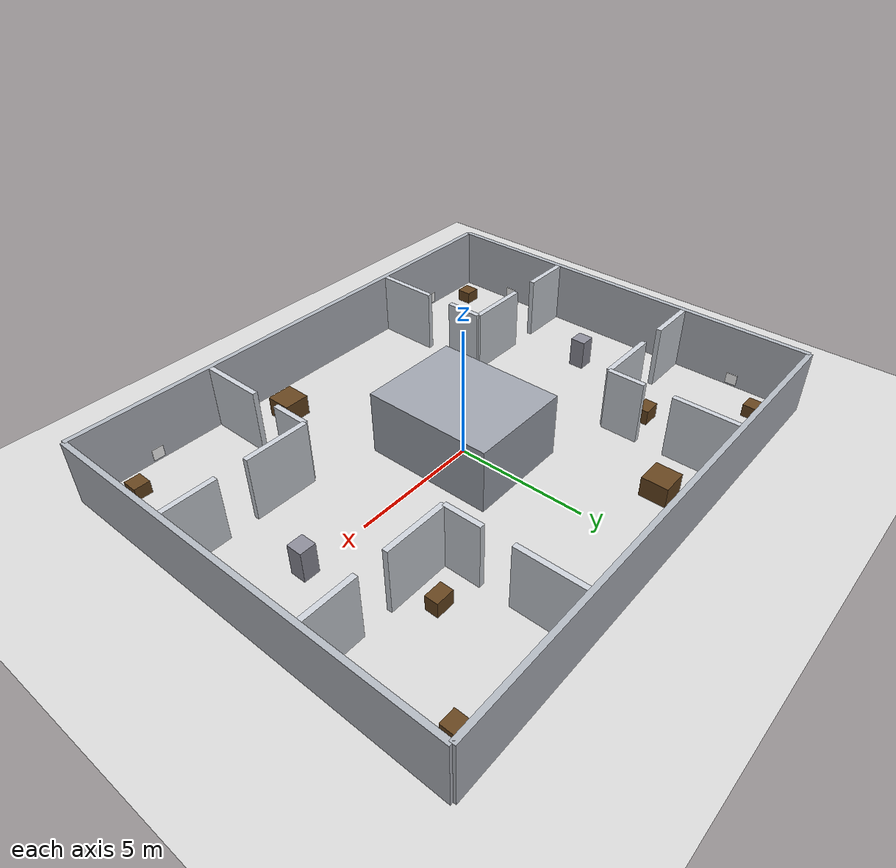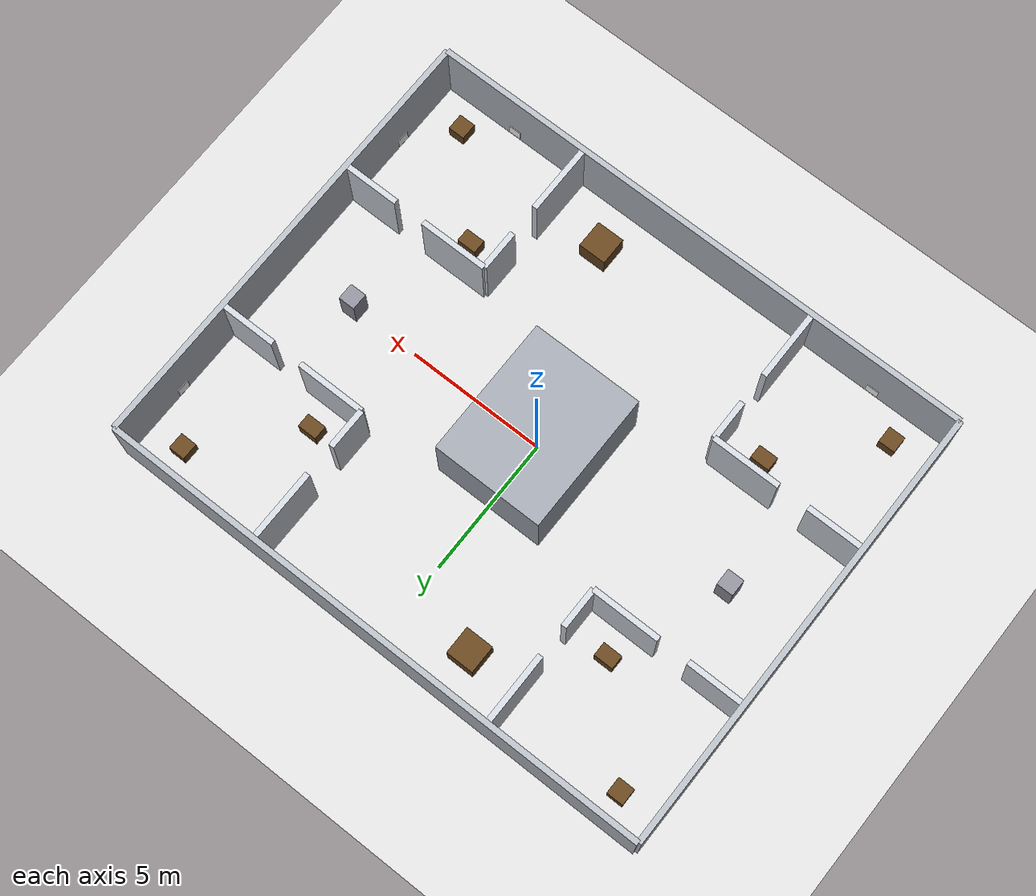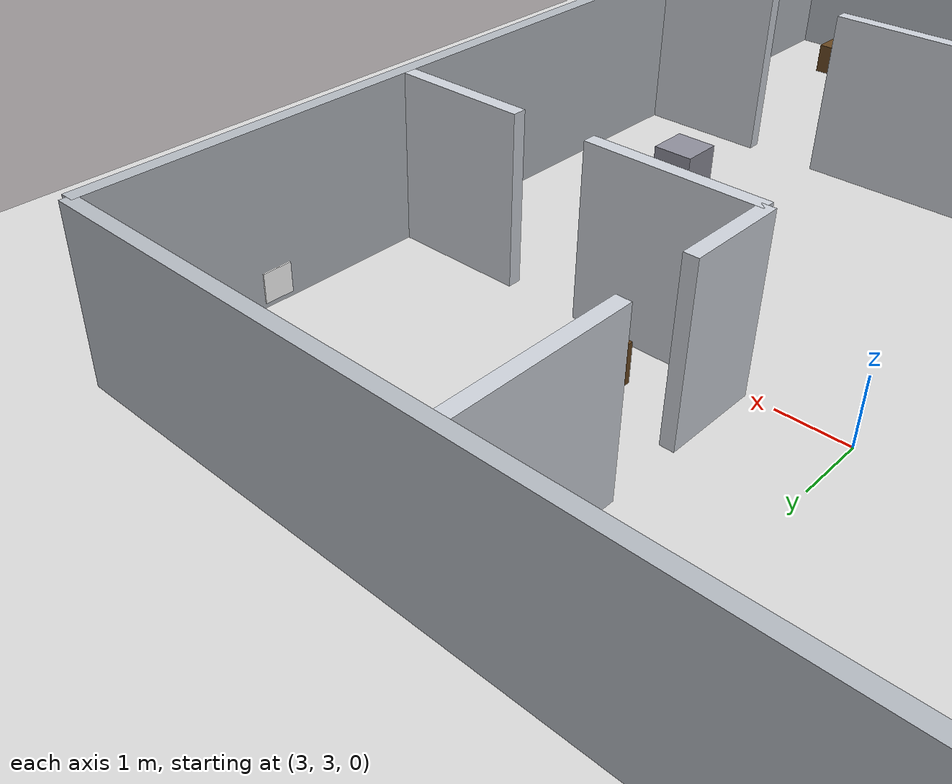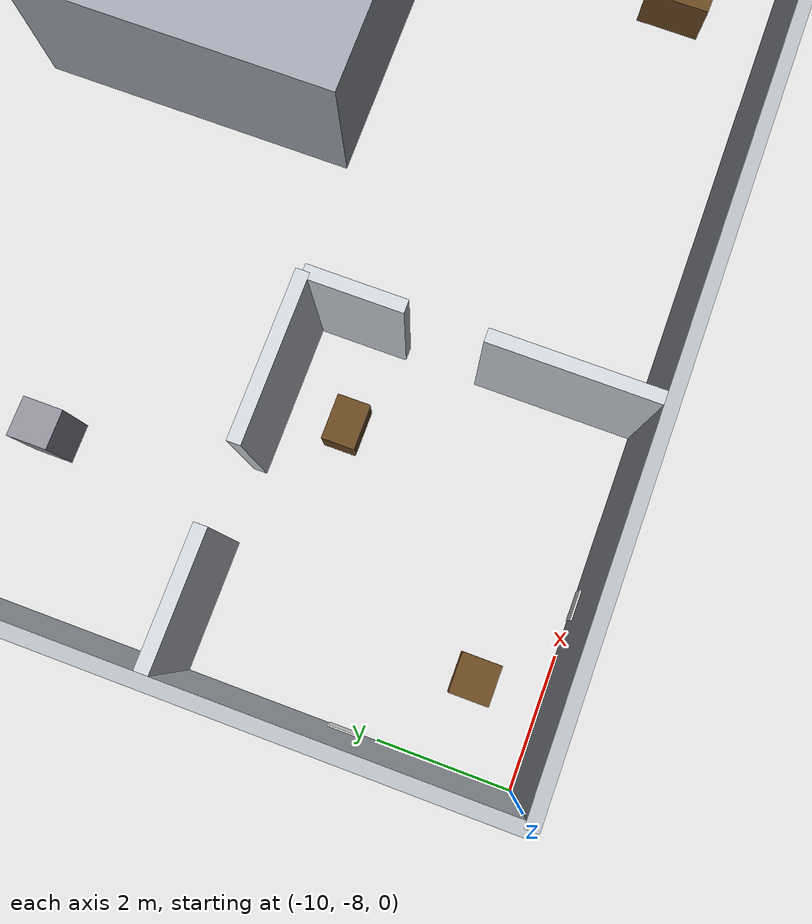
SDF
<?xml version="1.0"?>
<sdf version="1.8">
  <world name="multi_room">
    <physics type="ode">
      <real_time_update_rate>1000.0</real_time_update_rate>
      <max_step_size>0.001</max_step_size>
      <real_time_factor>1.0</real_time_factor>
      <ode>
        <solver>
          <type>quick</type>
          <iters>150</iters>
          <precon_iters>0</precon_iters>
          <sor>1.4</sor>
          <use_dynamic_moi_rescaling>1</use_dynamic_moi_rescaling>
        </solver>
        <constraints>
          <cfm>0.00001</cfm>
          <erp>0.2</erp>
          <contact_max_correcting_vel>2000.0</contact_max_correcting_vel>
          <contact_surface_layer>0.01</contact_surface_layer>
        </constraints>
      </ode>
    </physics>

    <!-- Essential Gazebo Plugins for Simulation -->
    <plugin filename="gz-sim-physics-system" name="gz::sim::systems::Physics"/>
    <plugin filename="gz-sim-user-commands-system" name="gz::sim::systems::UserCommands"/>
    <plugin filename="gz-sim-scene-broadcaster-system" name="gz::sim::systems::SceneBroadcaster"/>
    <plugin filename="gz-sim-sensors-system" name="gz::sim::systems::Sensors">
      <render_engine>ogre2</render_engine>
    </plugin>
    <plugin filename="gz-sim-imu-system" name="gz::sim::systems::Imu"/>

    <!-- Ambient Lighting & Sun -->
    <light type="directional" name="sun">
      <cast_shadows>true</cast_shadows>
      <pose>0 0 10 0 0 0</pose>
      <diffuse>0.8 0.8 0.8 1</diffuse>
      <specular>0.2 0.2 0.2 1</specular>
      <direction>-0.5 0.1 -0.9</direction>
    </light>

    <!-- Ground Plane -->
    <model name="ground_plane">
      <static>true</static>
      <link name="link">
        <collision name="collision">
          <geometry>
            <plane>
              <normal>0 0 1</normal>
              <size>50 50</size>
            </plane>
          </geometry>
          <surface>
            <friction>
              <ode>
                <mu>100</mu>
                <mu2>50</mu2>
              </ode>
            </friction>
          </surface>
        </collision>
        <visual name="visual">
          <geometry>
            <plane>
              <normal>0 0 1</normal>
              <size>50 50</size>
            </plane>
          </geometry>
          <material>
            <ambient>0.85 0.85 0.85 1</ambient>
            <diffuse>0.85 0.85 0.85 1</diffuse>
            <specular>0.1 0.1 0.1 1</specular>
          </material>
        </visual>
      </link>
    </model>

    <!-- Multi-room structure: perimeter, core, room partitions, obstacles -->
    <model name="multi_room_structure">
      <static>true</static>
      <link name="structure_link">

        <!-- Perimeter walls (20.2 x 16.2 outer, 2.5 m high, 0.2 m thick) -->
        <collision name="north_wall_col">
          <pose>0 8.1 1.25 0 0 0</pose>
          <geometry><box><size>20.2 0.2 2.5</size></box></geometry>
        </collision>
        <visual name="north_wall_vis">
          <pose>0 8.1 1.25 0 0 0</pose>
          <geometry><box><size>20.2 0.2 2.5</size></box></geometry>
          <material><ambient>0.7 0.72 0.75 1</ambient><diffuse>0.7 0.72 0.75 1</diffuse></material>
        </visual>

        <collision name="south_wall_col">
          <pose>0 -8.1 1.25 0 0 0</pose>
          <geometry><box><size>20.2 0.2 2.5</size></box></geometry>
        </collision>
        <visual name="south_wall_vis">
          <pose>0 -8.1 1.25 0 0 0</pose>
          <geometry><box><size>20.2 0.2 2.5</size></box></geometry>
          <material><ambient>0.7 0.72 0.75 1</ambient><diffuse>0.7 0.72 0.75 1</diffuse></material>
        </visual>

        <collision name="west_wall_col">
          <pose>-10.1 0 1.25 0 0 0</pose>
          <geometry><box><size>0.2 16.2 2.5</size></box></geometry>
        </collision>
        <visual name="west_wall_vis">
          <pose>-10.1 0 1.25 0 0 0</pose>
          <geometry><box><size>0.2 16.2 2.5</size></box></geometry>
          <material><ambient>0.7 0.72 0.75 1</ambient><diffuse>0.7 0.72 0.75 1</diffuse></material>
        </visual>

        <collision name="east_wall_col">
          <pose>10.1 0 1.25 0 0 0</pose>
          <geometry><box><size>0.2 16.2 2.5</size></box></geometry>
        </collision>
        <visual name="east_wall_vis">
          <pose>10.1 0 1.25 0 0 0</pose>
          <geometry><box><size>0.2 16.2 2.5</size></box></geometry>
          <material><ambient>0.7 0.72 0.75 1</ambient><diffuse>0.7 0.72 0.75 1</diffuse></material>
        </visual>

        <!-- Central core (solid block around which the corridor loops) -->
        <collision name="core_col">
          <pose>0 0 1.25 0 0 0</pose>
          <geometry><box><size>4.0 5.0 2.5</size></box></geometry>
        </collision>
        <visual name="core_vis">
          <pose>0 0 1.25 0 0 0</pose>
          <geometry><box><size>4.0 5.0 2.5</size></box></geometry>
          <material><ambient>0.62 0.64 0.68 1</ambient><diffuse>0.62 0.64 0.68 1</diffuse></material>
        </visual>

        <!-- Room 01 (NW): east partition y 3..8 with doorway y 4.45..5.55,
             south partition x -10..-4.5 with doorway x -8.05..-6.95 -->
        <collision name="r01_east_part_n_col">
          <pose>-4.5 3.725 1.25 0 0 0</pose>
          <geometry><box><size>0.2 1.45 2.5</size></box></geometry>
        </collision>
        <visual name="r01_east_part_n_vis">
          <pose>-4.5 3.725 1.25 0 0 0</pose>
          <geometry><box><size>0.2 1.45 2.5</size></box></geometry>
          <material><ambient>0.8 0.82 0.85 1</ambient><diffuse>0.8 0.82 0.85 1</diffuse></material>
        </visual>
        <collision name="r01_east_part_s_col">
          <pose>-4.5 6.775 1.25 0 0 0</pose>
          <geometry><box><size>0.2 2.45 2.5</size></box></geometry>
        </collision>
        <visual name="r01_east_part_s_vis">
          <pose>-4.5 6.775 1.25 0 0 0</pose>
          <geometry><box><size>0.2 2.45 2.5</size></box></geometry>
          <material><ambient>0.8 0.82 0.85 1</ambient><diffuse>0.8 0.82 0.85 1</diffuse></material>
        </visual>
        <collision name="r01_south_part_w_col">
          <pose>-9.025 3 1.25 0 0 0</pose>
          <geometry><box><size>1.95 0.2 2.5</size></box></geometry>
        </collision>
        <visual name="r01_south_part_w_vis">
          <pose>-9.025 3 1.25 0 0 0</pose>
          <geometry><box><size>1.95 0.2 2.5</size></box></geometry>
          <material><ambient>0.8 0.82 0.85 1</ambient><diffuse>0.8 0.82 0.85 1</diffuse></material>
        </visual>
        <collision name="r01_south_part_e_col">
          <pose>-5.725 3 1.25 0 0 0</pose>
          <geometry><box><size>2.45 0.2 2.5</size></box></geometry>
        </collision>
        <visual name="r01_south_part_e_vis">
          <pose>-5.725 3 1.25 0 0 0</pose>
          <geometry><box><size>2.45 0.2 2.5</size></box></geometry>
          <material><ambient>0.8 0.82 0.85 1</ambient><diffuse>0.8 0.82 0.85 1</diffuse></material>
        </visual>

        <!-- Room 02 (NE): west partition y 3..8 with doorway y 4.45..5.55,
             south partition x 4.5..10 with doorway x 6.95..8.05 -->
        <collision name="r02_west_part_s_col">
          <pose>4.5 3.725 1.25 0 0 0</pose>
          <geometry><box><size>0.2 1.45 2.5</size></box></geometry>
        </collision>
        <visual name="r02_west_part_s_vis">
          <pose>4.5 3.725 1.25 0 0 0</pose>
          <geometry><box><size>0.2 1.45 2.5</size></box></geometry>
          <material><ambient>0.8 0.82 0.85 1</ambient><diffuse>0.8 0.82 0.85 1</diffuse></material>
        </visual>
        <collision name="r02_west_part_n_col">
          <pose>4.5 6.775 1.25 0 0 0</pose>
          <geometry><box><size>0.2 2.45 2.5</size></box></geometry>
        </collision>
        <visual name="r02_west_part_n_vis">
          <pose>4.5 6.775 1.25 0 0 0</pose>
          <geometry><box><size>0.2 2.45 2.5</size></box></geometry>
          <material><ambient>0.8 0.82 0.85 1</ambient><diffuse>0.8 0.82 0.85 1</diffuse></material>
        </visual>
        <collision name="r02_south_part_w_col">
          <pose>5.725 3 1.25 0 0 0</pose>
          <geometry><box><size>2.45 0.2 2.5</size></box></geometry>
        </collision>
        <visual name="r02_south_part_w_vis">
          <pose>5.725 3 1.25 0 0 0</pose>
          <geometry><box><size>2.45 0.2 2.5</size></box></geometry>
          <material><ambient>0.8 0.82 0.85 1</ambient><diffuse>0.8 0.82 0.85 1</diffuse></material>
        </visual>
        <collision name="r02_south_part_e_col">
          <pose>9.025 3 1.25 0 0 0</pose>
          <geometry><box><size>1.95 0.2 2.5</size></box></geometry>
        </collision>
        <visual name="r02_south_part_e_vis">
          <pose>9.025 3 1.25 0 0 0</pose>
          <geometry><box><size>1.95 0.2 2.5</size></box></geometry>
          <material><ambient>0.8 0.82 0.85 1</ambient><diffuse>0.8 0.82 0.85 1</diffuse></material>
        </visual>

        <!-- Room 03 (SE): west partition y -8..-3 with doorway y -5.55..-4.45,
             north partition x 4.5..10 with doorway x 6.95..8.05 -->
        <collision name="r03_west_part_n_col">
          <pose>4.5 -3.725 1.25 0 0 0</pose>
          <geometry><box><size>0.2 1.45 2.5</size></box></geometry>
        </collision>
        <visual name="r03_west_part_n_vis">
          <pose>4.5 -3.725 1.25 0 0 0</pose>
          <geometry><box><size>0.2 1.45 2.5</size></box></geometry>
          <material><ambient>0.8 0.82 0.85 1</ambient><diffuse>0.8 0.82 0.85 1</diffuse></material>
        </visual>
        <collision name="r03_west_part_s_col">
          <pose>4.5 -6.775 1.25 0 0 0</pose>
          <geometry><box><size>0.2 2.45 2.5</size></box></geometry>
        </collision>
        <visual name="r03_west_part_s_vis">
          <pose>4.5 -6.775 1.25 0 0 0</pose>
          <geometry><box><size>0.2 2.45 2.5</size></box></geometry>
          <material><ambient>0.8 0.82 0.85 1</ambient><diffuse>0.8 0.82 0.85 1</diffuse></material>
        </visual>
        <collision name="r03_north_part_w_col">
          <pose>5.725 -3 1.25 0 0 0</pose>
          <geometry><box><size>2.45 0.2 2.5</size></box></geometry>
        </collision>
        <visual name="r03_north_part_w_vis">
          <pose>5.725 -3 1.25 0 0 0</pose>
          <geometry><box><size>2.45 0.2 2.5</size></box></geometry>
          <material><ambient>0.8 0.82 0.85 1</ambient><diffuse>0.8 0.82 0.85 1</diffuse></material>
        </visual>
        <collision name="r03_north_part_e_col">
          <pose>9.025 -3 1.25 0 0 0</pose>
          <geometry><box><size>1.95 0.2 2.5</size></box></geometry>
        </collision>
        <visual name="r03_north_part_e_vis">
          <pose>9.025 -3 1.25 0 0 0</pose>
          <geometry><box><size>1.95 0.2 2.5</size></box></geometry>
          <material><ambient>0.8 0.82 0.85 1</ambient><diffuse>0.8 0.82 0.85 1</diffuse></material>
        </visual>

        <!-- Room 04 (SW): east partition y -8..-3 with doorway y -5.55..-4.45,
             north partition x -10..-4.5 with doorway x -8.05..-6.95 -->
        <collision name="r04_east_part_n_col">
          <pose>-4.5 -3.725 1.25 0 0 0</pose>
          <geometry><box><size>0.2 1.45 2.5</size></box></geometry>
        </collision>
        <visual name="r04_east_part_n_vis">
          <pose>-4.5 -3.725 1.25 0 0 0</pose>
          <geometry><box><size>0.2 1.45 2.5</size></box></geometry>
          <material><ambient>0.8 0.82 0.85 1</ambient><diffuse>0.8 0.82 0.85 1</diffuse></material>
        </visual>
        <collision name="r04_east_part_s_col">
          <pose>-4.5 -6.775 1.25 0 0 0</pose>
          <geometry><box><size>0.2 2.45 2.5</size></box></geometry>
        </collision>
        <visual name="r04_east_part_s_vis">
          <pose>-4.5 -6.775 1.25 0 0 0</pose>
          <geometry><box><size>0.2 2.45 2.5</size></box></geometry>
          <material><ambient>0.8 0.82 0.85 1</ambient><diffuse>0.8 0.82 0.85 1</diffuse></material>
        </visual>
        <collision name="r04_north_part_w_col">
          <pose>-9.025 -3 1.25 0 0 0</pose>
          <geometry><box><size>1.95 0.2 2.5</size></box></geometry>
        </collision>
        <visual name="r04_north_part_w_vis">
          <pose>-9.025 -3 1.25 0 0 0</pose>
          <geometry><box><size>1.95 0.2 2.5</size></box></geometry>
          <material><ambient>0.8 0.82 0.85 1</ambient><diffuse>0.8 0.82 0.85 1</diffuse></material>
        </visual>
        <collision name="r04_north_part_e_col">
          <pose>-5.725 -3 1.25 0 0 0</pose>
          <geometry><box><size>2.45 0.2 2.5</size></box></geometry>
        </collision>
        <visual name="r04_north_part_e_vis">
          <pose>-5.725 -3 1.25 0 0 0</pose>
          <geometry><box><size>2.45 0.2 2.5</size></box></geometry>
          <material><ambient>0.8 0.82 0.85 1</ambient><diffuse>0.8 0.82 0.85 1</diffuse></material>
        </visual>

        <!-- Room crates (two per room, clear of doorways and marker sightlines) -->
        <collision name="r01_crate1_col"><pose>-8.7 7.0 0.25 0 0 0</pose><geometry><box><size>0.6 0.6 0.5</size></box></geometry></collision>
        <visual name="r01_crate1_vis"><pose>-8.7 7.0 0.25 0 0 0</pose><geometry><box><size>0.6 0.6 0.5</size></box></geometry><material><ambient>0.4 0.27 0.12 1</ambient><diffuse>0.4 0.27 0.12 1</diffuse></material></visual>
        <collision name="r01_crate2_col"><pose>-5.9 4.0 0.3 0 0 0</pose><geometry><box><size>0.7 0.5 0.6</size></box></geometry></collision>
        <visual name="r01_crate2_vis"><pose>-5.9 4.0 0.3 0 0 0</pose><geometry><box><size>0.7 0.5 0.6</size></box></geometry><material><ambient>0.4 0.27 0.12 1</ambient><diffuse>0.4 0.27 0.12 1</diffuse></material></visual>

        <collision name="r02_crate1_col"><pose>8.7 7.0 0.25 0 0 0</pose><geometry><box><size>0.6 0.6 0.5</size></box></geometry></collision>
        <visual name="r02_crate1_vis"><pose>8.7 7.0 0.25 0 0 0</pose><geometry><box><size>0.6 0.6 0.5</size></box></geometry><material><ambient>0.4 0.27 0.12 1</ambient><diffuse>0.4 0.27 0.12 1</diffuse></material></visual>
        <collision name="r02_crate2_col"><pose>5.9 4.0 0.3 0 0 0</pose><geometry><box><size>0.7 0.5 0.6</size></box></geometry></collision>
        <visual name="r02_crate2_vis"><pose>5.9 4.0 0.3 0 0 0</pose><geometry><box><size>0.7 0.5 0.6</size></box></geometry><material><ambient>0.4 0.27 0.12 1</ambient><diffuse>0.4 0.27 0.12 1</diffuse></material></visual>

        <collision name="r03_crate1_col"><pose>8.7 -7.0 0.25 0 0 0</pose><geometry><box><size>0.6 0.6 0.5</size></box></geometry></collision>
        <visual name="r03_crate1_vis"><pose>8.7 -7.0 0.25 0 0 0</pose><geometry><box><size>0.6 0.6 0.5</size></box></geometry><material><ambient>0.4 0.27 0.12 1</ambient><diffuse>0.4 0.27 0.12 1</diffuse></material></visual>
        <collision name="r03_crate2_col"><pose>5.9 -4.0 0.3 0 0 0</pose><geometry><box><size>0.7 0.5 0.6</size></box></geometry></collision>
        <visual name="r03_crate2_vis"><pose>5.9 -4.0 0.3 0 0 0</pose><geometry><box><size>0.7 0.5 0.6</size></box></geometry><material><ambient>0.4 0.27 0.12 1</ambient><diffuse>0.4 0.27 0.12 1</diffuse></material></visual>

        <collision name="r04_crate1_col"><pose>-8.7 -7.0 0.25 0 0 0</pose><geometry><box><size>0.6 0.6 0.5</size></box></geometry></collision>
        <visual name="r04_crate1_vis"><pose>-8.7 -7.0 0.25 0 0 0</pose><geometry><box><size>0.6 0.6 0.5</size></box></geometry><material><ambient>0.4 0.27 0.12 1</ambient><diffuse>0.4 0.27 0.12 1</diffuse></material></visual>
        <collision name="r04_crate2_col"><pose>-5.9 -4.0 0.3 0 0 0</pose><geometry><box><size>0.7 0.5 0.6</size></box></geometry></collision>
        <visual name="r04_crate2_vis"><pose>-5.9 -4.0 0.3 0 0 0</pose><geometry><box><size>0.7 0.5 0.6</size></box></geometry><material><ambient>0.4 0.27 0.12 1</ambient><diffuse>0.4 0.27 0.12 1</diffuse></material></visual>

        <!-- Corridor obstacles (loop stays drivable around them) -->
        <collision name="west_pillar_col"><pose>-7.5 0 0.6 0 0 0</pose><geometry><box><size>0.6 0.6 1.2</size></box></geometry></collision>
        <visual name="west_pillar_vis"><pose>-7.5 0 0.6 0 0 0</pose><geometry><box><size>0.6 0.6 1.2</size></box></geometry><material><ambient>0.55 0.55 0.6 1</ambient><diffuse>0.55 0.55 0.6 1</diffuse></material></visual>
        <collision name="east_pillar_col"><pose>7.5 0 0.6 0 0 0</pose><geometry><box><size>0.6 0.6 1.2</size></box></geometry></collision>
        <visual name="east_pillar_vis"><pose>7.5 0 0.6 0 0 0</pose><geometry><box><size>0.6 0.6 1.2</size></box></geometry><material><ambient>0.55 0.55 0.6 1</ambient><diffuse>0.55 0.55 0.6 1</diffuse></material></visual>
        <collision name="north_hall_crate_col"><pose>-2.5 6.5 0.4 0 0 0</pose><geometry><box><size>1.0 1.0 0.8</size></box></geometry></collision>
        <visual name="north_hall_crate_vis"><pose>-2.5 6.5 0.4 0 0 0</pose><geometry><box><size>1.0 1.0 0.8</size></box></geometry><material><ambient>0.4 0.27 0.12 1</ambient><diffuse>0.4 0.27 0.12 1</diffuse></material></visual>
        <collision name="south_hall_crate_col"><pose>2.5 -6.5 0.4 0 0 0</pose><geometry><box><size>1.0 1.0 0.8</size></box></geometry></collision>
        <visual name="south_hall_crate_vis"><pose>2.5 -6.5 0.4 0 0 0</pose><geometry><box><size>1.0 1.0 0.8</size></box></geometry><material><ambient>0.4 0.27 0.12 1</ambient><diffuse>0.4 0.27 0.12 1</diffuse></material></visual>
      </link>
    </model>

    <!-- QR wall markers - poses and payloads from markers/qr_markers.yaml -->
    <model name="qr_marker_00">
      <static>true</static>
      <pose>-7.25 7.99 0.30 0 0 0</pose>
      <link name="link">
        <visual name="visual">
          <geometry><box><size>0.45 0.02 0.45</size></box></geometry>
          <material>
            <ambient>1 1 1 1</ambient>
            <diffuse>1 1 1 1</diffuse>
            <specular>0 0 0 1</specular>
            <pbr><metal>
              <albedo_map>../markers/qr_room_01_00.png</albedo_map>
              <roughness>0.9</roughness>
              <metalness>0.0</metalness>
            </metal></pbr>
          </material>
        </visual>
      </link>
    </model>

    <model name="qr_marker_01">
      <static>true</static>
      <pose>-9.99 5.5 0.30 0 0 1.5707963</pose>
      <link name="link">
        <visual name="visual">
          <geometry><box><size>0.45 0.02 0.45</size></box></geometry>
          <material>
            <ambient>1 1 1 1</ambient>
            <diffuse>1 1 1 1</diffuse>
            <specular>0 0 0 1</specular>
            <pbr><metal>
              <albedo_map>../markers/qr_room_01_01.png</albedo_map>
              <roughness>0.9</roughness>
              <metalness>0.0</metalness>
            </metal></pbr>
          </material>
        </visual>
      </link>
    </model>

    <model name="qr_marker_02">
      <static>true</static>
      <pose>7.25 7.99 0.30 0 0 0</pose>
      <link name="link">
        <visual name="visual">
          <geometry><box><size>0.45 0.02 0.45</size></box></geometry>
          <material>
            <ambient>1 1 1 1</ambient>
            <diffuse>1 1 1 1</diffuse>
            <specular>0 0 0 1</specular>
            <pbr><metal>
              <albedo_map>../markers/qr_room_02_02.png</albedo_map>
              <roughness>0.9</roughness>
              <metalness>0.0</metalness>
            </metal></pbr>
          </material>
        </visual>
      </link>
    </model>

    <model name="qr_marker_03">
      <static>true</static>
      <pose>9.99 5.5 0.30 0 0 -1.5707963</pose>
      <link name="link">
        <visual name="visual">
          <geometry><box><size>0.45 0.02 0.45</size></box></geometry>
          <material>
            <ambient>1 1 1 1</ambient>
            <diffuse>1 1 1 1</diffuse>
            <specular>0 0 0 1</specular>
            <pbr><metal>
              <albedo_map>../markers/qr_room_02_03.png</albedo_map>
              <roughness>0.9</roughness>
              <metalness>0.0</metalness>
            </metal></pbr>
          </material>
        </visual>
      </link>
    </model>

    <model name="qr_marker_04">
      <static>true</static>
      <pose>7.25 -7.99 0.30 0 0 0</pose>
      <link name="link">
        <visual name="visual">
          <geometry><box><size>0.45 0.02 0.45</size></box></geometry>
          <material>
            <ambient>1 1 1 1</ambient>
            <diffuse>1 1 1 1</diffuse>
            <specular>0 0 0 1</specular>
            <pbr><metal>
              <albedo_map>../markers/qr_room_03_04.png</albedo_map>
              <roughness>0.9</roughness>
              <metalness>0.0</metalness>
            </metal></pbr>
          </material>
        </visual>
      </link>
    </model>

    <model name="qr_marker_05">
      <static>true</static>
      <pose>9.99 -5.5 0.30 0 0 -1.5707963</pose>
      <link name="link">
        <visual name="visual">
          <geometry><box><size>0.45 0.02 0.45</size></box></geometry>
          <material>
            <ambient>1 1 1 1</ambient>
            <diffuse>1 1 1 1</diffuse>
            <specular>0 0 0 1</specular>
            <pbr><metal>
              <albedo_map>../markers/qr_room_03_05.png</albedo_map>
              <roughness>0.9</roughness>
              <metalness>0.0</metalness>
            </metal></pbr>
          </material>
        </visual>
      </link>
    </model>

    <model name="qr_marker_06">
      <static>true</static>
      <pose>-7.25 -7.99 0.30 0 0 0</pose>
      <link name="link">
        <visual name="visual">
          <geometry><box><size>0.45 0.02 0.45</size></box></geometry>
          <material>
            <ambient>1 1 1 1</ambient>
            <diffuse>1 1 1 1</diffuse>
            <specular>0 0 0 1</specular>
            <pbr><metal>
              <albedo_map>../markers/qr_room_04_06.png</albedo_map>
              <roughness>0.9</roughness>
              <metalness>0.0</metalness>
            </metal></pbr>
          </material>
        </visual>
      </link>
    </model>

    <model name="qr_marker_07">
      <static>true</static>
      <pose>-9.99 -5.5 0.30 0 0 1.5707963</pose>
      <link name="link">
        <visual name="visual">
          <geometry><box><size>0.45 0.02 0.45</size></box></geometry>
          <material>
            <ambient>1 1 1 1</ambient>
            <diffuse>1 1 1 1</diffuse>
            <specular>0 0 0 1</specular>
            <pbr><metal>
              <albedo_map>../markers/qr_room_04_07.png</albedo_map>
              <roughness>0.9</roughness>
              <metalness>0.0</metalness>
            </metal></pbr>
          </material>
        </visual>
      </link>
    </model>
  </world>
</sdf>
